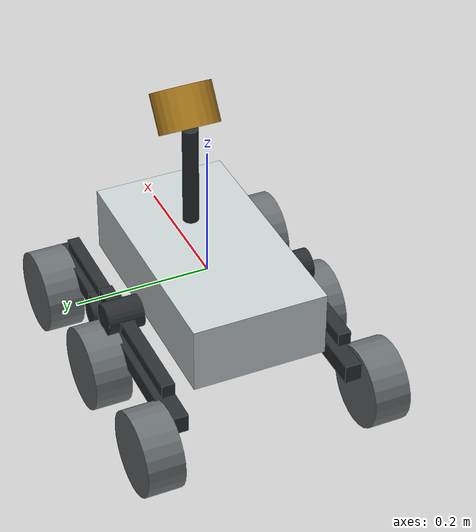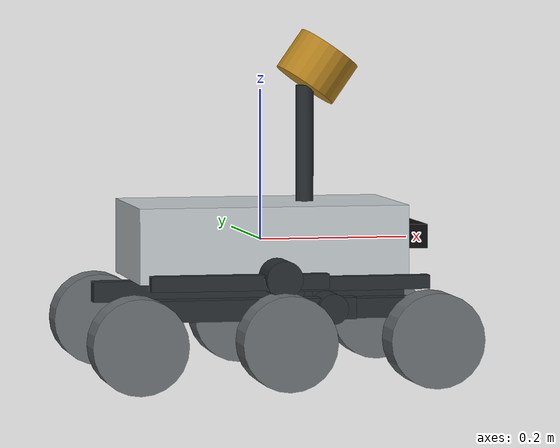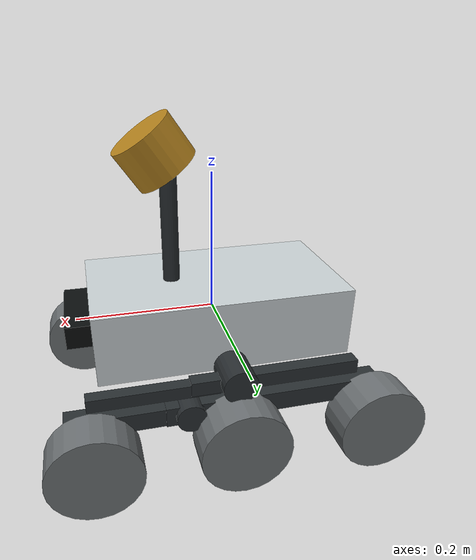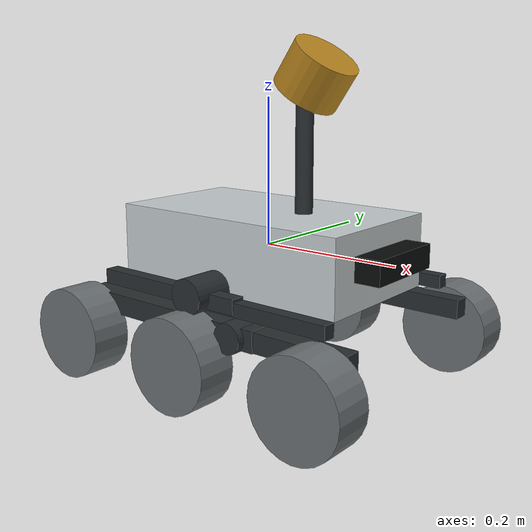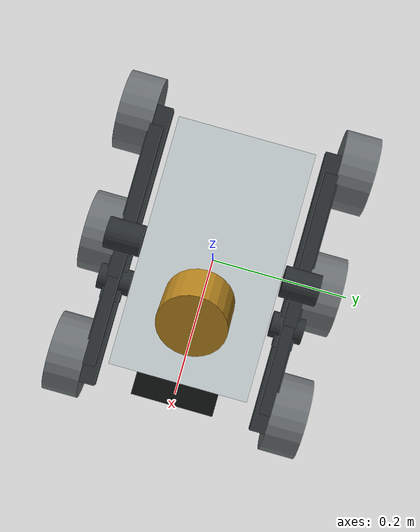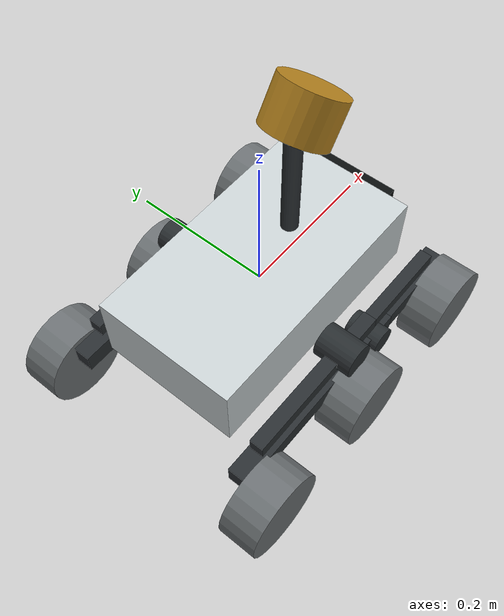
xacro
<?xml version="1.0"?>
<robot name="lunar_rover" xmlns:xacro="http://www.ros.org/wiki/xacro">
  <xacro:arg name="use_sim" default="true"/>
  <xacro:arg name="sensor_noise" default="true"/>
  <xacro:arg name="controller_config" default=""/>
  <xacro:arg
    name="ros2_control_hardware_plugin"
    default="gz_ros2_control/GazeboSimSystem"/>

  <!-- Compact rover envelope: 0.54 m long x 0.40 m wide including wheels. -->
  <xacro:property name="track" value="0.345"/>
  <xacro:property name="front_x" value="0.195"/>
  <xacro:property name="rear_x" value="-0.195"/>
  <xacro:property name="middle_x" value="0.00"/>
  <xacro:property name="rocker_y" value="0.135"/>
  <xacro:property name="wheel_radius" value="0.0625"/>
  <xacro:property name="wheel_width" value="0.055"/>
  <xacro:property name="wheel_mass" value="0.70"/>
  <xacro:property name="wheel_center_z" value="-0.12"/>
  <xacro:property name="steering_limit" value="${pi / 3.0}"/>

  <material name="regolith_gray">
    <color rgba="0.42 0.44 0.45 1.0"/>
  </material>
  <material name="chassis_white">
    <color rgba="0.78 0.81 0.82 1.0"/>
  </material>
  <material name="suspension_dark">
    <color rgba="0.16 0.18 0.19 1.0"/>
  </material>
  <material name="sensor_gold">
    <color rgba="0.72 0.52 0.12 1.0"/>
  </material>
  <material name="camera_black">
    <color rgba="0.04 0.05 0.05 1.0"/>
  </material>

  <xacro:macro name="box_inertial" params="mass x y z">
    <inertial>
      <origin xyz="0 0 0" rpy="0 0 0"/>
      <mass value="${mass}"/>
      <inertia
        ixx="${mass * (y * y + z * z) / 12.0}"
        ixy="0.0"
        ixz="0.0"
        iyy="${mass * (x * x + z * z) / 12.0}"
        iyz="0.0"
        izz="${mass * (x * x + y * y) / 12.0}"/>
    </inertial>
  </xacro:macro>

  <xacro:macro name="wheel_inertial" params="mass radius width">
    <inertial>
      <origin xyz="0 0 0" rpy="0 0 0"/>
      <mass value="${mass}"/>
      <inertia
        ixx="${mass * (3.0 * radius * radius + width * width) / 12.0}"
        ixy="0.0"
        ixz="0.0"
        iyy="${0.5 * mass * radius * radius}"
        iyz="0.0"
        izz="${mass * (3.0 * radius * radius + width * width) / 12.0}"/>
    </inertial>
  </xacro:macro>

  <xacro:macro name="wheel_link" params="name">
    <link name="${name}_wheel_link">
      <visual>
        <origin xyz="0 0 0" rpy="${pi / 2.0} 0 0"/>
        <geometry>
          <cylinder radius="${wheel_radius}" length="${wheel_width}"/>
        </geometry>
        <material name="regolith_gray"/>
      </visual>
      <collision>
        <origin xyz="0 0 0" rpy="${pi / 2.0} 0 0"/>
        <geometry>
          <cylinder radius="${wheel_radius}" length="${wheel_width}"/>
        </geometry>
      </collision>
      <xacro:wheel_inertial
        mass="${wheel_mass}"
        radius="${wheel_radius}"
        width="${wheel_width}"/>
    </link>
    <gazebo reference="${name}_wheel_link">
      <mu1>1.20</mu1>
      <mu2>0.85</mu2>
      <kp>1000000.0</kp>
      <kd>100.0</kd>
      <minDepth>0.001</minDepth>
      <maxVel>0.10</maxVel>
      <selfCollide>false</selfCollide>
      <material>Gazebo/DarkGrey</material>
    </gazebo>
  </xacro:macro>

  <xacro:macro
    name="steered_wheel"
    params="name parent x y z">
    <link name="${name}_steering_link">
      <visual>
        <geometry>
          <box size="0.044 0.044 0.060"/>
        </geometry>
        <material name="suspension_dark"/>
      </visual>
      <collision>
        <geometry>
          <box size="0.044 0.044 0.060"/>
        </geometry>
      </collision>
      <xacro:box_inertial mass="0.16" x="0.044" y="0.044" z="0.060"/>
    </link>
    <joint name="${name}_steering_joint" type="revolute">
      <parent link="${parent}"/>
      <child link="${name}_steering_link"/>
      <origin xyz="${x} ${y} ${z}" rpy="0 0 0"/>
      <axis xyz="0 0 1"/>
      <limit
        lower="${-steering_limit}"
        upper="${steering_limit}"
        effort="40.0"
        velocity="1.2"/>
      <dynamics damping="0.8" friction="0.2"/>
    </joint>
    <xacro:wheel_link name="${name}"/>
    <joint name="${name}_wheel_joint" type="continuous">
      <parent link="${name}_steering_link"/>
      <child link="${name}_wheel_link"/>
      <origin xyz="0 0 0" rpy="0 0 0"/>
      <!-- Positive angular velocity produces motion along base_link +X. -->
      <axis xyz="0 1 0"/>
      <limit effort="35.0" velocity="12.0"/>
      <dynamics damping="0.08" friction="0.03"/>
    </joint>
  </xacro:macro>

  <xacro:macro name="fixed_steer_wheel" params="name parent x y z">
    <xacro:wheel_link name="${name}"/>
    <joint name="${name}_wheel_joint" type="continuous">
      <parent link="${parent}"/>
      <child link="${name}_wheel_link"/>
      <origin xyz="${x} ${y} ${z}" rpy="0 0 0"/>
      <!-- Positive angular velocity produces motion along base_link +X. -->
      <axis xyz="0 1 0"/>
      <limit effort="35.0" velocity="12.0"/>
      <dynamics damping="0.08" friction="0.03"/>
    </joint>
  </xacro:macro>

  <xacro:macro name="suspension_side" params="side sign">
    <link name="${side}_rocker_link">
      <visual>
        <origin xyz="-0.055 0 -0.040" rpy="0 0 0"/>
        <geometry>
          <box size="0.305 0.030 0.028"/>
        </geometry>
        <material name="suspension_dark"/>
      </visual>
      <visual>
        <origin xyz="-0.055 0 -0.005" rpy="0 0 0"/>
        <geometry>
          <box size="0.235 0.020 0.020"/>
        </geometry>
        <material name="suspension_dark"/>
      </visual>
      <visual>
        <origin xyz="0 0 0" rpy="${pi / 2.0} 0 0"/>
        <geometry>
          <cylinder radius="0.024" length="0.055"/>
        </geometry>
        <material name="suspension_dark"/>
      </visual>
      <collision>
        <origin xyz="-0.055 0 -0.040" rpy="0 0 0"/>
        <geometry>
          <box size="0.305 0.030 0.028"/>
        </geometry>
      </collision>
      <xacro:box_inertial mass="0.85" x="0.305" y="0.030" z="0.028"/>
    </link>
    <joint name="${side}_rocker_joint" type="revolute">
      <parent link="base_link"/>
      <child link="${side}_rocker_link"/>
      <origin xyz="0 ${sign * rocker_y} -0.04" rpy="0 0 0"/>
      <axis xyz="0 1 0"/>
      <limit lower="${-0.45}" upper="0.45" effort="180.0" velocity="1.5"/>
      <dynamics damping="5.0" friction="0.5"/>
    </joint>

    <link name="${side}_bogie_link">
      <visual>
        <origin xyz="0.045 0 0" rpy="0 0 0"/>
        <geometry>
          <box size="0.235 0.028 0.026"/>
        </geometry>
        <material name="suspension_dark"/>
      </visual>
      <visual>
        <origin xyz="0.045 0 0.032" rpy="0 0 0"/>
        <geometry>
          <box size="0.175 0.018 0.018"/>
        </geometry>
        <material name="suspension_dark"/>
      </visual>
      <visual>
        <origin xyz="0 0 0" rpy="${pi / 2.0} 0 0"/>
        <geometry>
          <cylinder radius="0.020" length="0.050"/>
        </geometry>
        <material name="suspension_dark"/>
      </visual>
      <collision>
        <origin xyz="0.045 0 0" rpy="0 0 0"/>
        <geometry>
          <box size="0.235 0.028 0.026"/>
        </geometry>
      </collision>
      <xacro:box_inertial mass="0.60" x="0.235" y="0.028" z="0.026"/>
    </link>
    <joint name="${side}_bogie_joint" type="revolute">
      <parent link="${side}_rocker_link"/>
      <child link="${side}_bogie_link"/>
      <origin xyz="0.065 0 -0.04" rpy="0 0 0"/>
      <axis xyz="0 1 0"/>
      <limit lower="${-0.61}" upper="0.61" effort="120.0" velocity="1.8"/>
      <dynamics damping="3.0" friction="0.35"/>
    </joint>

    <xacro:steered_wheel
      name="${side}_front"
      parent="${side}_bogie_link"
      x="${front_x - 0.065}"
      y="${sign * (track / 2.0 - rocker_y)}"
      z="-0.04"/>
    <xacro:fixed_steer_wheel
      name="${side}_middle"
      parent="${side}_bogie_link"
      x="${middle_x - 0.065}"
      y="${sign * (track / 2.0 - rocker_y)}"
      z="-0.04"/>
    <xacro:steered_wheel
      name="${side}_rear"
      parent="${side}_rocker_link"
      x="${rear_x}"
      y="${sign * (track / 2.0 - rocker_y)}"
      z="-0.08"/>
  </xacro:macro>

  <link name="base_link">
    <visual>
      <geometry>
        <box size="0.36 0.20 0.10"/>
      </geometry>
      <material name="chassis_white"/>
    </visual>
    <collision name="base_link_chassis_collision">
      <geometry>
        <box size="0.36 0.20 0.10"/>
      </geometry>
    </collision>
    <xacro:box_inertial mass="6.5" x="0.36" y="0.20" z="0.10"/>
  </link>
  <xacro:suspension_side side="left" sign="1.0"/>
  <xacro:suspension_side side="right" sign="-1.0"/>

  <link name="sensor_mast_link">
    <visual>
      <origin xyz="0 0 0.0775" rpy="0 0 0"/>
      <geometry>
        <cylinder radius="0.012" length="0.155"/>
      </geometry>
      <material name="suspension_dark"/>
    </visual>
    <collision>
      <origin xyz="0 0 0.0775" rpy="0 0 0"/>
      <geometry>
        <cylinder radius="0.012" length="0.155"/>
      </geometry>
    </collision>
    <xacro:box_inertial mass="0.12" x="0.024" y="0.024" z="0.155"/>
  </link>
  <joint name="sensor_mast_joint" type="fixed">
    <parent link="base_link"/>
    <child link="sensor_mast_link"/>
    <origin xyz="0.06 0 0.05" rpy="0 0 0"/>
  </joint>

  <link name="mid360_link">
    <visual>
      <origin xyz="0 0 0.03" rpy="0 0 0"/>
      <geometry>
        <cylinder radius="0.045" length="0.06"/>
      </geometry>
      <material name="sensor_gold"/>
    </visual>
    <collision>
      <origin xyz="0 0 0.03" rpy="0 0 0"/>
      <geometry>
        <cylinder radius="0.045" length="0.06"/>
      </geometry>
    </collision>
    <xacro:box_inertial mass="0.265" x="0.09" y="0.09" z="0.06"/>
  </link>
  <joint name="mid360_joint" type="fixed">
    <parent link="sensor_mast_link"/>
    <child link="mid360_link"/>
    <origin xyz="0 0 0.155" rpy="0 ${35.0 * pi / 180.0} 0"/>
  </joint>
  <link name="livox_frame"/>
  <joint name="livox_frame_joint" type="fixed">
    <parent link="mid360_link"/>
    <child link="livox_frame"/>
    <origin xyz="0 0 0" rpy="0 0 0"/>
  </joint>
  <link name="livox_imu_frame"/>
  <joint name="livox_imu_frame_joint" type="fixed">
    <parent link="mid360_link"/>
    <child link="livox_imu_frame"/>
    <origin xyz="0 0 0" rpy="0 0 0"/>
  </joint>

  <link name="gemini335_link">
    <visual>
      <geometry>
        <box size="0.035 0.12 0.032"/>
      </geometry>
      <material name="camera_black"/>
    </visual>
    <collision>
      <geometry>
        <box size="0.035 0.12 0.032"/>
      </geometry>
    </collision>
    <xacro:box_inertial mass="0.30" x="0.035" y="0.12" z="0.032"/>
  </link>
  <joint name="gemini335_joint" type="fixed">
    <parent link="base_link"/>
    <child link="gemini335_link"/>
    <origin xyz="0.1975 0 0.005" rpy="0 0 0"/>
  </joint>

  <link name="gemini335_color_optical_frame"/>
  <joint name="gemini335_color_optical_joint" type="fixed">
    <parent link="gemini335_link"/>
    <child link="gemini335_color_optical_frame"/>
    <origin xyz="0.0175 0 0" rpy="${-pi / 2.0} 0 ${-pi / 2.0}"/>
  </joint>
  <link name="gemini335_depth_optical_frame"/>
  <joint name="gemini335_depth_optical_joint" type="fixed">
    <parent link="gemini335_color_optical_frame"/>
    <child link="gemini335_depth_optical_frame"/>
    <origin xyz="0 0 0" rpy="0 0 0"/>
  </joint>
  <!-- Orbbec SDK v2 defaults retained as fixed aliases for real-sensor topics. -->
  <link name="camera_color_optical_frame"/>
  <joint name="camera_color_optical_alias_joint" type="fixed">
    <parent link="gemini335_color_optical_frame"/>
    <child link="camera_color_optical_frame"/>
    <origin xyz="0 0 0" rpy="0 0 0"/>
  </joint>
  <link name="camera_depth_optical_frame"/>
  <joint name="camera_depth_optical_alias_joint" type="fixed">
    <parent link="gemini335_depth_optical_frame"/>
    <child link="camera_depth_optical_frame"/>
    <origin xyz="0 0 0" rpy="0 0 0"/>
  </joint>

  <ros2_control name="LunarRoverSystem" type="system">
    <hardware>
      <plugin>$(arg ros2_control_hardware_plugin)</plugin>
    </hardware>

    <joint name="left_front_steering_joint">
      <command_interface name="position">
        <param name="min">${-steering_limit}</param>
        <param name="max">${steering_limit}</param>
      </command_interface>
      <state_interface name="position"/>
      <state_interface name="velocity"/>
    </joint>
    <joint name="right_front_steering_joint">
      <command_interface name="position">
        <param name="min">${-steering_limit}</param>
        <param name="max">${steering_limit}</param>
      </command_interface>
      <state_interface name="position"/>
      <state_interface name="velocity"/>
    </joint>
    <joint name="left_rear_steering_joint">
      <command_interface name="position">
        <param name="min">${-steering_limit}</param>
        <param name="max">${steering_limit}</param>
      </command_interface>
      <state_interface name="position"/>
      <state_interface name="velocity"/>
    </joint>
    <joint name="right_rear_steering_joint">
      <command_interface name="position">
        <param name="min">${-steering_limit}</param>
        <param name="max">${steering_limit}</param>
      </command_interface>
      <state_interface name="position"/>
      <state_interface name="velocity"/>
    </joint>

    <joint name="left_front_wheel_joint">
      <command_interface name="velocity">
        <param name="min">-12.0</param>
        <param name="max">12.0</param>
      </command_interface>
      <state_interface name="position"/>
      <state_interface name="velocity"/>
    </joint>
    <joint name="left_middle_wheel_joint">
      <command_interface name="velocity">
        <param name="min">-12.0</param>
        <param name="max">12.0</param>
      </command_interface>
      <state_interface name="position"/>
      <state_interface name="velocity"/>
    </joint>
    <joint name="left_rear_wheel_joint">
      <command_interface name="velocity">
        <param name="min">-12.0</param>
        <param name="max">12.0</param>
      </command_interface>
      <state_interface name="position"/>
      <state_interface name="velocity"/>
    </joint>
    <joint name="right_front_wheel_joint">
      <command_interface name="velocity">
        <param name="min">-12.0</param>
        <param name="max">12.0</param>
      </command_interface>
      <state_interface name="position"/>
      <state_interface name="velocity"/>
    </joint>
    <joint name="right_middle_wheel_joint">
      <command_interface name="velocity">
        <param name="min">-12.0</param>
        <param name="max">12.0</param>
      </command_interface>
      <state_interface name="position"/>
      <state_interface name="velocity"/>
    </joint>
    <joint name="right_rear_wheel_joint">
      <command_interface name="velocity">
        <param name="min">-12.0</param>
        <param name="max">12.0</param>
      </command_interface>
      <state_interface name="position"/>
      <state_interface name="velocity"/>
    </joint>

    <joint name="left_rocker_joint">
      <command_interface name="effort">
        <param name="min">-180.0</param>
        <param name="max">180.0</param>
      </command_interface>
      <state_interface name="position"/>
      <state_interface name="velocity"/>
    </joint>
    <joint name="right_rocker_joint">
      <command_interface name="effort">
        <param name="min">-180.0</param>
        <param name="max">180.0</param>
      </command_interface>
      <state_interface name="position"/>
      <state_interface name="velocity"/>
    </joint>
    <joint name="left_bogie_joint">
      <state_interface name="position"/>
      <state_interface name="velocity"/>
    </joint>
    <joint name="right_bogie_joint">
      <state_interface name="position"/>
      <state_interface name="velocity"/>
    </joint>
  </ros2_control>

  <xacro:if value="$(arg use_sim)">
    <gazebo>
      <plugin
        filename="gz_ros2_control-system"
        name="gz_ros2_control::GazeboSimROS2ControlPlugin">
        <parameters>$(arg controller_config)</parameters>
      </plugin>
      <plugin
        filename="libignition-gazebo-odometry-publisher-system.so"
        name="ignition::gazebo::systems::OdometryPublisher">
        <odom_frame>world</odom_frame>
        <robot_base_frame>base_link</robot_base_frame>
        <odom_publish_frequency>50</odom_publish_frequency>
        <odom_topic>/simulation/ground_truth/odometry</odom_topic>
        <odom_covariance_topic>/simulation/ground_truth/odometry_with_covariance</odom_covariance_topic>
        <tf_topic>/simulation/ground_truth/tf</tf_topic>
        <dimensions>3</dimensions>
        <gaussian_noise>0.0</gaussian_noise>
      </plugin>
      <plugin
        filename="libignition-gazebo-touchplugin-system.so"
        name="ignition::gazebo::systems::TouchPlugin">
        <target>rock</target>
        <namespace>simulation/rock_collision</namespace>
        <time>0.001</time>
        <enabled>true</enabled>
      </plugin>
      <plugin
        filename="libignition-gazebo-touchplugin-system.so"
        name="ignition::gazebo::systems::TouchPlugin">
        <target>step</target>
        <namespace>simulation/step_collision</namespace>
        <time>0.001</time>
        <enabled>true</enabled>
      </plugin>
    </gazebo>

    <gazebo reference="base_link">
      <sensor name="chassis_contact_sensor" type="contact">
        <always_on>true</always_on>
        <update_rate>100</update_rate>
        <topic>/simulation/chassis_contacts</topic>
        <contact>
          <collision>base_link_chassis_collision</collision>
        </contact>
      </sensor>
    </gazebo>

    <gazebo reference="mid360_link">
      <sensor name="mid360_gpu_lidar" type="gpu_lidar">
        <always_on>true</always_on>
        <visualize>true</visualize>
        <update_rate>10</update_rate>
        <topic>/mid360/scan</topic>
        <gz_frame_id>livox_frame</gz_frame_id>
        <lidar>
          <scan>
            <horizontal>
              <samples>1800</samples>
              <resolution>1</resolution>
              <min_angle>${-pi}</min_angle>
              <max_angle>${pi}</max_angle>
            </horizontal>
            <vertical>
              <samples>11</samples>
              <resolution>1</resolution>
              <min_angle>${-7.0 * pi / 180.0}</min_angle>
              <max_angle>${52.0 * pi / 180.0}</max_angle>
            </vertical>
          </scan>
          <range>
            <min>0.10</min>
            <max>40.0</max>
            <resolution>0.01</resolution>
          </range>
          <noise>
            <type>gaussian</type>
            <mean>0.0</mean>
            <!-- Range-dependent noise and dropout are added by mid360_sim_adapter. -->
            <stddev>0.0</stddev>
          </noise>
        </lidar>
      </sensor>
      <sensor name="mid360_imu" type="imu">
        <always_on>true</always_on>
        <update_rate>200</update_rate>
        <topic>/mid360/imu</topic>
        <gz_frame_id>livox_imu_frame</gz_frame_id>
        <imu>
          <angular_velocity>
            <x>
              <noise type="gaussian">
                <mean>0.0</mean>
                <xacro:if value="$(arg sensor_noise)">
                  <stddev>0.0007</stddev>
                </xacro:if>
                <xacro:unless value="$(arg sensor_noise)">
                  <stddev>0.0</stddev>
                </xacro:unless>
              </noise>
            </x>
            <y>
              <noise type="gaussian">
                <mean>0.0</mean>
                <xacro:if value="$(arg sensor_noise)">
                  <stddev>0.0007</stddev>
                </xacro:if>
                <xacro:unless value="$(arg sensor_noise)">
                  <stddev>0.0</stddev>
                </xacro:unless>
              </noise>
            </y>
            <z>
              <noise type="gaussian">
                <mean>0.0</mean>
                <xacro:if value="$(arg sensor_noise)">
                  <stddev>0.0007</stddev>
                </xacro:if>
                <xacro:unless value="$(arg sensor_noise)">
                  <stddev>0.0</stddev>
                </xacro:unless>
              </noise>
            </z>
          </angular_velocity>
          <linear_acceleration>
            <x>
              <noise type="gaussian">
                <mean>0.0</mean>
                <xacro:if value="$(arg sensor_noise)">
                  <stddev>0.02</stddev>
                </xacro:if>
                <xacro:unless value="$(arg sensor_noise)">
                  <stddev>0.0</stddev>
                </xacro:unless>
              </noise>
            </x>
            <y>
              <noise type="gaussian">
                <mean>0.0</mean>
                <xacro:if value="$(arg sensor_noise)">
                  <stddev>0.02</stddev>
                </xacro:if>
                <xacro:unless value="$(arg sensor_noise)">
                  <stddev>0.0</stddev>
                </xacro:unless>
              </noise>
            </y>
            <z>
              <noise type="gaussian">
                <mean>0.0</mean>
                <xacro:if value="$(arg sensor_noise)">
                  <stddev>0.02</stddev>
                </xacro:if>
                <xacro:unless value="$(arg sensor_noise)">
                  <stddev>0.0</stddev>
                </xacro:unless>
              </noise>
            </z>
          </linear_acceleration>
        </imu>
      </sensor>
    </gazebo>

    <gazebo reference="gemini335_link">
      <sensor name="gemini335_rgbd" type="rgbd_camera">
        <always_on>true</always_on>
        <visualize>true</visualize>
        <update_rate>15</update_rate>
        <topic>/gemini335</topic>
        <gz_frame_id>gemini335_color_optical_frame</gz_frame_id>
        <camera>
          <optical_frame_id>gemini335_color_optical_frame</optical_frame_id>
          <horizontal_fov>${90.0 * pi / 180.0}</horizontal_fov>
          <image>
            <width>640</width>
            <height>400</height>
            <format>R8G8B8</format>
          </image>
          <clip>
            <near>0.10</near>
            <far>10.0</far>
          </clip>
          <noise>
            <type>gaussian</type>
            <mean>0.0</mean>
            <xacro:if value="$(arg sensor_noise)">
              <stddev>0.003</stddev>
            </xacro:if>
            <xacro:unless value="$(arg sensor_noise)">
              <stddev>0.0</stddev>
            </xacro:unless>
          </noise>
        </camera>
      </sensor>
    </gazebo>
  </xacro:if>
</robot>
